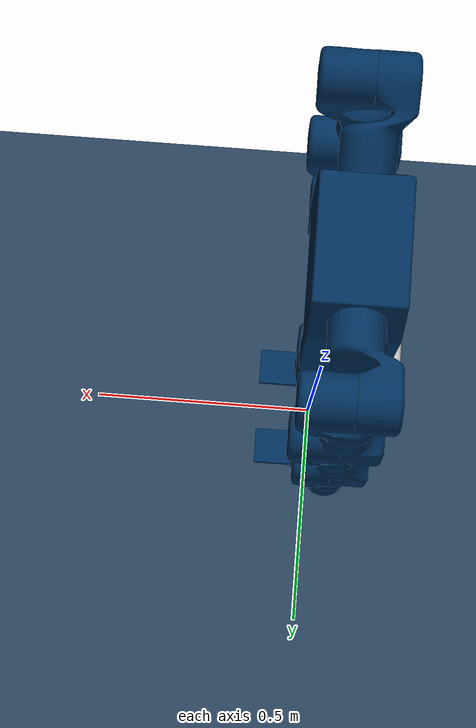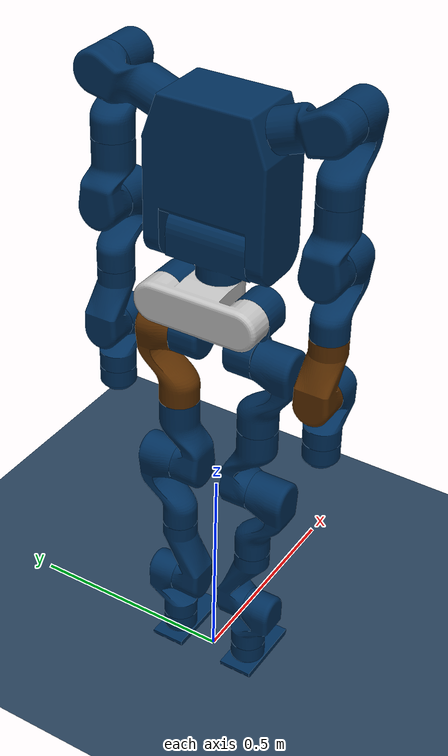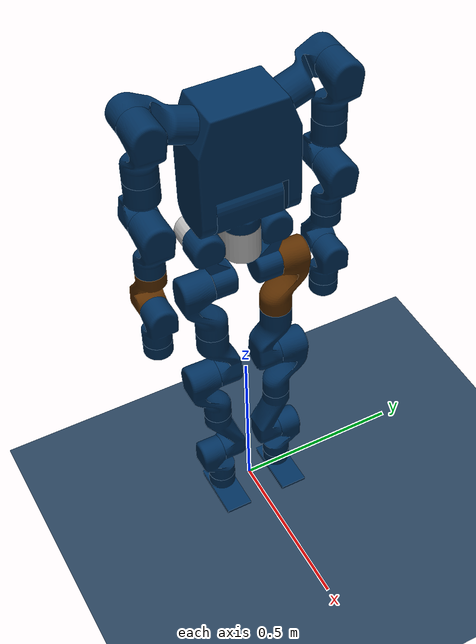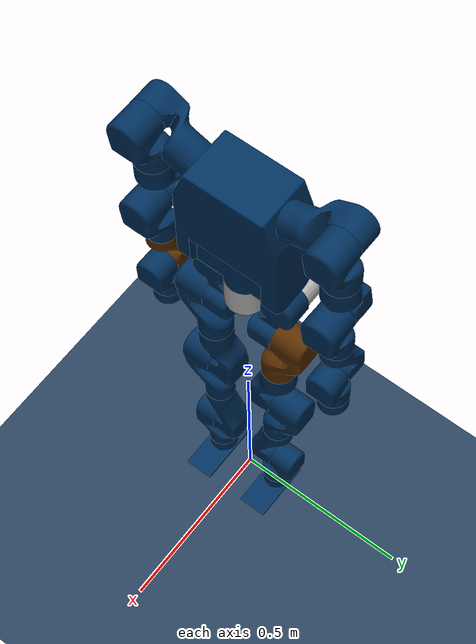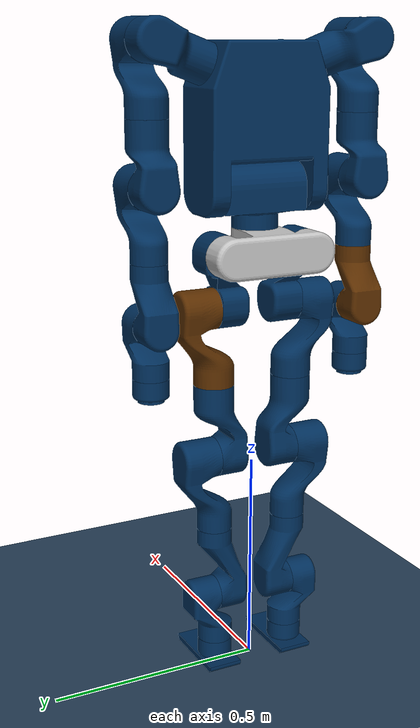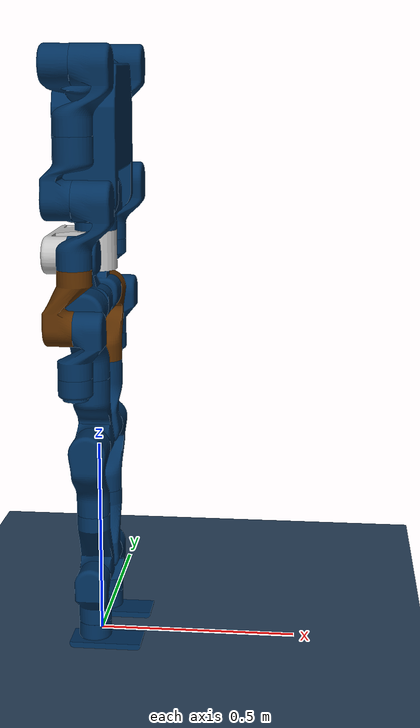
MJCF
<mujoco model="scene">
<include file="HRO-c2-v1_fixed_feet.xml"/>

<statistic center="0 0 0.1" extent="0.8"/>

<visual>
  <headlight diffuse="0.6 0.6 0.6" ambient="0.3 0.3 0.3" specular="0 0 0"/>
  <rgba haze="0.15 0.25 0.35 1"/>
  <global azimuth="150" elevation="-20"/>
</visual>

<asset>
  <texture type="skybox" builtin="gradient" rgb1="0.3 0.5 0.7" rgb2="0 0 0" width="512" height="3072"/>
  <texture type="2d" name="groundplane" builtin="checker" mark="edge" rgb1="0.2 0.3 0.4" rgb2="0.1 0.2 0.3"
           markrgb="0.8 0.8 0.8" width="300" height="300"/>
  <material name="groundplane" texture="groundplane" texuniform="true" texrepeat="5 5" reflectance="0.2"/>
</asset>

<worldbody>
  <light pos="0 0 1.5" dir="0 0 -1" directional="true"/>
  <geom name="floor" size="0 0 1" pos="0 0 0" type="plane" material="groundplane"/>
</worldbody>
</mujoco>

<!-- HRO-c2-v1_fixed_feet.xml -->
<mujoco model="HRO-c2-v1">
  <compiler angle="radian" />

  <option timestep="0.001" tolerance="1e-10" solver="Newton" jacobian="dense" cone="pyramidal" gravity="0 0 -9.81">
        <flag contact="enable" energy="enable"/>
   </option>
   <size njmax="500" nconmax="1000" />
   <default>
      <light castshadow="false" />
      <default class="visual">
          <geom contype="0" conaffinity="0" group="1" type="mesh" euler="1.57 0 0" />
      </default>
      <default class="collision">
          <geom contype="1" conaffinity="1" friction="1.0 0.3 0.3" rgba="0.5 0.6 0.7 0"
              margin="0.001" group="0" />
      </default>
      <joint damping="0.9" frictionloss="0.2" armature="0.01"/>
   </default>

  <asset>
    <mesh name="torso_base_link" file="../meshes/torso_base_link.STL" />
    <mesh name="torso_mid_link" file="../meshes/torso_mid_link.STL" />
    <mesh name="torso_upper_link" file="../meshes/torso_upper_link.STL" />
    <mesh name="right_arm_link_1_2" file="../meshes/right_arm_link_1_2.STL" />
    <mesh name="right_arm_link_2_3" file="../meshes/right_arm_link_2_3.STL" />
    <mesh name="right_arm_link_3_4" file="../meshes/right_arm_link_3_4.STL" />
    <mesh name="right_arm_link_4_5" file="../meshes/right_arm_link_4_5.STL" />
    <mesh name="right_arm_link_5_6" file="../meshes/right_arm_link_5_6.STL" />
    <mesh name="right_arm_link_6_7" file="../meshes/right_arm_link_6_7.STL" />
    <mesh name="right_arm_link_7_flange" file="../meshes/right_arm_link_7_flange.STL" />
    <mesh name="left_arm_link_1_2" file="../meshes/left_arm_link_1_2.STL" />
    <mesh name="left_arm_link_2_3" file="../meshes/left_arm_link_2_3.STL" />
    <mesh name="left_arm_link_3_4" file="../meshes/left_arm_link_3_4.STL" />
    <mesh name="left_arm_link_4_5" file="../meshes/left_arm_link_4_5.STL" />
    <mesh name="left_arm_link_5_6" file="../meshes/left_arm_link_5_6.STL" />
    <mesh name="left_arm_link_6_7" file="../meshes/left_arm_link_6_7.STL" />
    <mesh name="left_arm_link_7_flange" file="../meshes/left_arm_link_7_flange.STL" />
    <mesh name="right_leg_link_1_2" file="../meshes/right_leg_link_1_2.STL" />
    <mesh name="right_leg_link_2_3" file="../meshes/right_leg_link_2_3.STL" />
    <mesh name="right_leg_link_3_4" file="../meshes/right_leg_link_3_4.STL" />
    <mesh name="right_leg_link_4_5" file="../meshes/right_leg_link_4_5.STL" />
    <mesh name="right_leg_link_5_6" file="../meshes/right_leg_link_5_6.STL" />
    <mesh name="right_leg_link_6_7" file="../meshes/right_leg_link_6_7.STL" />
    <mesh name="right_foot" file="../meshes/right_foot.STL" />
    <mesh name="left_leg_link_1_2" file="../meshes/left_leg_link_1_2.STL" />
    <mesh name="left_leg_link_2_3" file="../meshes/left_leg_link_2_3.STL" />
    <mesh name="left_leg_link_3_4" file="../meshes/left_leg_link_3_4.STL" />
    <mesh name="left_leg_link_4_5" file="../meshes/left_leg_link_4_5.STL" />
    <mesh name="left_leg_link_5_6" file="../meshes/left_leg_link_5_6.STL" />
    <mesh name="left_leg_link_6_7" file="../meshes/left_leg_link_6_7.STL" />
    <mesh name="left_foot" file="../meshes/left_foot.STL" />
  </asset>
  <worldbody>
    <body name="torso" pos="0 0 1.05">
      <inertial pos="0 0 -0.07605" quat="1 0 -0.000399148 0" mass="3.813" diaginertia="0.010549 0.0093089 0.0079184"/>
      <freejoint name="float_base"/>
      <geom type="mesh" contype="0" conaffinity="0" group="1" density="0" rgba="0.752941 0.752941 0.752941 1" mesh="torso_base_link" />
      <site name="imu" quat="1 0 0 0"/>
      <body name="torso_mid_link">
        <inertial pos="-0.00156358 0.00715796 0.0658836" quat="0.50209 0.502078 -0.497913 0.497901" mass="1.31669" diaginertia="0.00304434 0.0026738 0.0020105" />
        <joint name="torso_pan_joint" pos="0 0 0" axis="0 0 1" />
        <geom type="mesh" rgba="0 0.180392 0.352941 1" mesh="torso_mid_link" />
        <body name="torso_upper_link" pos="-0.002 0 0.09" quat="0.707105 0.707108 0 0">
          <inertial pos="0 0.149492 0.000746189" quat="0.707107 0.707107 0 0" mass="12.6305" diaginertia="0.175502 0.118926 0.0998809" />
          <joint name="torso_tilt_joint" pos="0 0 0" axis="0 0 1" />
          <geom type="mesh" rgba="0 0.180392 0.352941 1" mesh="torso_upper_link" />
          <body name="right_arm_link_1_2" pos="0 0.25913 0.12256" quat="0.696363 -0.122789 0.122789 0.696365">
            <inertial pos="6.66229e-05 0.00972183 0.111511" quat="0.690745 -0.151338 0.152103 0.690531" mass="0.895979" diaginertia="0.00180636 0.00172632 0.0010585" />
            <joint name="right_arm_joint_1" pos="0 0 0" axis="0 0 1" />
            <geom type="mesh" rgba="0 0.180392 0.352941 1" mesh="right_arm_link_1_2" />
            <body name="right_arm_link_2_3" pos="2.2306e-05 0.001 0.143974" quat="-0.40558 -0.40558 0.579228 -0.579228">
              <inertial pos="-6.90115e-05 0.0941053 0.0187134" quat="0.590039 0.389286 -0.388917 0.590808" mass="0.939061" diaginertia="0.00223026 0.00214876 0.00113389" />
              <joint name="right_arm_joint_2" pos="0 0 0" axis="0 0 -1" />
              <geom type="mesh" rgba="0 0.180392 0.352941 1" mesh="right_arm_link_2_3" />
              <body name="right_arm_link_3_4" pos="-0.000101672 0.155918 -0.001" quat="0.707107 -0.707107 0 0">
                <inertial pos="6.65707e-05 0.00972352 0.111509" quat="0.690667 -0.151351 0.152098 0.690607" mass="0.89602" diaginertia="0.00180639 0.00172628 0.00105857" />
                <joint name="right_arm_joint_3" pos="0 0 0" axis="0 0 1" />
                <geom type="mesh" rgba="0 0.180392 0.352941 1" mesh="right_arm_link_3_4" />
                <body name="right_arm_link_4_5" pos="0.000101672 0.001 0.144082" quat="0.707107 0.707107 0 0">
                  <inertial pos="-5.49866e-05 0.0775911 0.0234808" quat="0.587745 0.392875 -0.392567 0.5883" mass="0.75432" diaginertia="0.0018719 0.00179237 0.000839777" />
                  <joint name="right_arm_joint_4" pos="0 0 0" axis="0 0 -1" />
                  <geom type="mesh" rgba="0 0.180392 0.352941 1" mesh="right_arm_link_4_5" />
                  <body name="right_arm_link_5_6" pos="-0.000101672 0.155918 -0.001" quat="0.707107 -0.707107 0 0">
                    <inertial pos="4.81902e-05 0.0120985 0.0723354" quat="0.694249 -0.131912 0.132621 0.695003" mass="0.830411" diaginertia="0.00139479 0.00131924 0.000763044" />
                    <joint name="right_arm_joint_5" pos="0 0 0" axis="0 0 1" />
                    <geom type="mesh" rgba="0.352941 0.176471 0 1" mesh="right_arm_link_5_6" />
                    <body name="right_arm_link_6_7" pos="8.89858e-05 0.001 0.139053" quat="0 0 0.707107 -0.707107">
                      <inertial pos="5.55441e-05 -0.0645896 0.0130664" quat="0.374227 0.599929 -0.599467 0.375073" mass="0.603009" diaginertia="0.000972707 0.000896384 0.000563153" />
                      <joint name="right_arm_joint_6" pos="0 0 0" axis="0 0 -1" />
                      <geom type="mesh" rgba="0 0.180392 0.352941 1" mesh="right_arm_link_6_7" />
                      <body name="right_arm_link_7_flange" pos="8.89858e-05 -0.114947 -0.001" quat="0 0 -0.707107 0.707107">
                        <inertial pos="0 0 0.030125" quat="0.5 0.5 -0.5 0.5" mass="0.177051" diaginertia="0.000183558 0.000118797 0.000118797" />
                        <joint name="right_arm_joint_7" pos="0 0 0" axis="0 0 1" />
                        <geom type="mesh" rgba="0 0.180392 0.352941 1" mesh="right_arm_link_7_flange" />
                      </body>
                    </body>
                  </body>
                </body>
              </body>
            </body>
          </body>
          <body name="left_arm_link_1_2" pos="0 0.259129 -0.122557" quat="0.122788 -0.696364 0.696364 0.122788">
            <inertial pos="6.68057e-05 0.00972203 0.11151" quat="0.690616 -0.151344 0.152113 0.690656" mass="0.895996" diaginertia="0.00180638 0.00172627 0.00105855" />
            <joint name="left_arm_joint_1" pos="0 0 0" axis="0 0 1" />
            <geom type="mesh" rgba="0 0.180392 0.352941 1" mesh="left_arm_link_1_2" />
            <body name="left_arm_link_2_3" pos="0.00017655 0.001 0.14397" quat="-0.40558 -0.40558 -0.579228 0.579228">
              <inertial pos="-6.90427e-05 0.0941053 0.0187133" quat="0.590035 0.389283 -0.388919 0.590812" mass="0.939059" diaginertia="0.00223027 0.00214876 0.0011339" />
              <joint name="left_arm_joint_2" pos="0 0 0" axis="0 0 1" />
              <geom type="mesh" rgba="0 0.180392 0.352941 1" mesh="left_arm_link_2_3" />
              <body name="left_arm_link_3_4" pos="-0.000101672 0.155918 -0.001" quat="0.707107 -0.707107 0 0">
                <inertial pos="6.66116e-05 0.00972343 0.111509" quat="0.690659 -0.151349 0.1521 0.690615" mass="0.896018" diaginertia="0.00180639 0.00172628 0.00105857" />
                <joint name="left_arm_joint_3" pos="0 0 0" axis="0 0 1" />
                <geom type="mesh" rgba="0 0.180392 0.352941 1" mesh="left_arm_link_3_4" />
                <body name="left_arm_link_4_5" pos="0.000101672 0.001 0.144082" quat="0.707107 0.707107 0 0">
                  <inertial pos="-5.49866e-05 0.0775911 0.0234808" quat="0.587745 0.392875 -0.392567 0.5883" mass="0.75432" diaginertia="0.0018719 0.00179237 0.000839777" />
                  <joint name="left_arm_joint_4" pos="0 0 0" axis="0 0 1" />
                  <geom type="mesh" rgba="0 0.180392 0.352941 1" mesh="left_arm_link_4_5" />
                  <body name="left_arm_link_5_6" pos="-0.000101672 0.155918 -0.001" quat="0.707107 -0.707107 0 0">
                    <inertial pos="6.35484e-05 0.0159543 0.103902" quat="0.693997 -0.133308 0.13402 0.69472" mass="0.629719" diaginertia="0.0012358 0.00115924 0.000609412" />
                    <joint name="left_arm_joint_5" pos="0 0 0" axis="0 0 1" />
                    <geom type="mesh" rgba="0 0.180392 0.352941 1" mesh="left_arm_link_5_6" />
                    <body name="left_arm_link_6_7" pos="8.89858e-05 0.001 0.139053" quat="0.707107 0.707107 0 0">
                      <inertial pos="-5.55441e-05 0.0645896 0.0130664" quat="0.599467 0.375073 -0.374227 0.599929" mass="0.603009" diaginertia="0.000972707 0.000896384 0.000563153" />
                      <joint name="left_arm_joint_6" pos="0 0 0" axis="0 0 1" />
                      <geom type="mesh" rgba="0 0.180392 0.352941 1" mesh="left_arm_link_6_7" />
                      <body name="left_arm_link_7_flange" pos="-8.89858e-05 0.114947 -0.001" quat="0.707107 -0.707107 0 0">
                        <inertial pos="0 0 0.030125" quat="0.5 0.5 -0.5 0.5" mass="0.177051" diaginertia="0.000183558 0.000118797 0.000118797" />
                        <joint name="left_arm_joint_7" pos="0 0 0" axis="0 0 1" />
                        <geom type="mesh" rgba="0 0.180392 0.352941 1" mesh="left_arm_link_7_flange" />
                      </body>
                    </body>
                  </body>
                </body>
              </body>
            </body>
          </body>
        </body>
      </body>
      <body name="right_leg_link_1_2" pos="-0.03 -0.1 -0.05" quat="0.499998 0.5 0.500002 0.5">
        <inertial pos="0.0187738 -0.0799753 0.0291053" quat="0.702898 0.660003 0.264826 0.0140361" mass="1.91641" diaginertia="0.00602508 0.0059124 0.00177096" />
        <joint name="right_leg_joint_1" pos="0 0 0" axis="0 0 1" />
        <geom type="mesh" rgba="0 0.180392 0.352941 1" mesh="right_leg_link_1_2" />
        <body name="right_leg_link_2_3" pos="-0.001 -0.124082 0.0299983" quat="0.707107 0 -0.707107 0">
          <inertial pos="6.31218e-05 -0.106217 0.0190122" quat="0.402495 0.581516 -0.581017 0.402811" mass="0.960297" diaginertia="0.0026208 0.00253389 0.00117053" />
          <joint name="right_leg_joint_2" pos="0 0 0" axis="0 0 1" />
          <geom type="mesh" rgba="0 0.180392 0.352941 1" mesh="right_leg_link_2_3" />
          <body name="right_leg_link_3_4" pos="0.000101672 -0.175918 -0.001" quat="0.707107 0.707107 0 0">
            <inertial pos="-6.98893e-05 -0.0103212 0.131072" quat="0.697335 0.119794 -0.120419 0.696328" mass="0.928189" diaginertia="0.00230822 0.00222229 0.00111523" />
            <joint name="right_leg_joint_3" pos="0 0 0" axis="0 0 1" />
            <geom type="mesh" rgba="0 0.180392 0.352941 1" mesh="right_leg_link_3_4" />
            <body name="right_leg_link_4_5" pos="-0.000101672 -0.001 0.174082" quat="0.707107 -0.707107 0 0">
              <inertial pos="5.19679e-05 -0.0882835 0.0237428" quat="0.405472 0.579685 -0.57887 0.405545" mass="0.774401" diaginertia="0.00223741 0.00215316 0.000869691" />
              <joint name="right_leg_joint_4" pos="0 0 0" axis="0 0 1" />
              <geom type="mesh" rgba="0 0.180392 0.352941 1" mesh="right_leg_link_4_5" />
              <body name="right_leg_link_5_6" pos="0.000101672 -0.175918 -0.001" quat="0.707107 0.707107 0 0">
                <inertial pos="-6.10694e-05 -0.0164428 0.123013" quat="0.698336 0.107307 -0.107761 0.699428" mass="0.662392" diaginertia="0.00165874 0.00157331 0.000655129" />
                <joint name="right_leg_joint_5" pos="0 0 0" axis="0 0 1" />
                <geom type="mesh" rgba="0 0.180392 0.352941 1" mesh="right_leg_link_5_6" />
                <body name="right_leg_link_6_7" pos="-8.89858e-05 -0.001 0.169053" quat="0.707107 -0.707107 0 0">
                  <inertial pos="5.55441e-05 -0.0645896 0.0130664" quat="0.374227 0.599929 -0.599467 0.375073" mass="0.603009" diaginertia="0.000972707 0.000896384 0.000563153" />
                  <joint name="right_leg_joint_6" pos="0 0 0" axis="0 0 1" />
                  <geom type="mesh" rgba="0 0.180392 0.352941 1" mesh="right_leg_link_6_7" />
                  <body name="right_foot" pos="8.89858e-05 -0.114947 -0.001" quat="0.707107 0.707107 0 0">
                    <inertial pos="0.0241549 0 0.0493965" quat="0 0.708514 0 0.705697" mass="0.71281" diaginertia="0.0019389 0.00158618 0.000425854" />
                    <joint name="right_leg_joint_7" pos="0 0 0" axis="0 0 1" />
                    <geom type="mesh" rgba="0 0.180392 0.352941 1" mesh="right_foot" />
                  </body>
                </body>
              </body>
            </body>
          </body>
        </body>
      </body>
      <body name="left_leg_link_1_2" pos="-0.03 0.1 -0.05" quat="0.5 0.5 0.5 0.5">
        <inertial pos="-0.0187738 -0.0799753 0.0291053" quat="0.702898 0.660003 -0.264826 -0.0140361" mass="1.91641" diaginertia="0.00602508 0.0059124 0.00177096" />
        <joint name="left_leg_joint_1" pos="0 0 0" axis="0 0 1" />
        <geom type="mesh" rgba="0 0.180392 0.352941 1" mesh="left_leg_link_1_2" />
        <body name="left_leg_link_2_3" pos="0.001 -0.124082 0.0300017" quat="0 0.707107 0 0.707107">
          <inertial pos="-4.78961e-05 0.0798815 0.00831302" quat="0.583556 0.399089 -0.398794 0.584084" mass="1.27657" diaginertia="0.00293392 0.00289462 0.00152429" />
          <joint name="left_leg_joint_2" pos="0 0 0" axis="0 0 1" />
          <geom type="mesh" rgba="0.352941 0.176471 0 1" mesh="left_leg_link_2_3" />
          <body name="left_leg_link_3_4" pos="-0.000101672 0.175918 -0.001" quat="0.707107 -0.707107 0 0">
            <inertial pos="6.98911e-05 0.0103212 0.131072" quat="0.697335 -0.119794 0.120419 0.696328" mass="0.928189" diaginertia="0.00230822 0.00222229 0.00111523" />
            <joint name="left_leg_joint_3" pos="0 0 0" axis="0 0 1" />
            <geom type="mesh" rgba="0 0.180392 0.352941 1" mesh="left_leg_link_3_4" />
            <body name="left_leg_link_4_5" pos="0.000101672 0.001 0.174082" quat="0.707107 0.707107 0 0">
              <inertial pos="-5.19729e-05 0.0882835 0.0237428" quat="0.57887 0.405545 -0.405472 0.579685" mass="0.774401" diaginertia="0.00223741 0.00215316 0.000869691" />
              <joint name="left_leg_joint_4" pos="0 0 0" axis="0 0 1" />
              <geom type="mesh" rgba="0 0.180392 0.352941 1" mesh="left_leg_link_4_5" />
              <body name="left_leg_link_5_6" pos="-0.000101672 0.175918 -0.001" quat="0.707107 -0.707107 0 0">
                <inertial pos="6.10694e-05 0.0164428 0.123013" quat="0.698336 -0.107307 0.107761 0.699428" mass="0.662392" diaginertia="0.00165874 0.00157331 0.000655129" />
                <joint name="left_leg_joint_5" pos="0 0 0" axis="0 0 1" />
                <geom type="mesh" rgba="0 0.180392 0.352941 1" mesh="left_leg_link_5_6" />
                <body name="left_leg_link_6_7" pos="8.89858e-05 0.001 0.169053" quat="0.707107 0.707107 0 0">
                  <inertial pos="-5.55441e-05 0.0645896 0.0130664" quat="0.599467 0.375073 -0.374227 0.599929" mass="0.603009" diaginertia="0.000972707 0.000896384 0.000563153" />
                  <joint name="left_leg_joint_6" pos="0 0 0" axis="0 0 1" />
                  <geom type="mesh" rgba="0 0.180392 0.352941 1" mesh="left_leg_link_6_7" />
                  <body name="left_foot" pos="-8.89858e-05 0.114947 -0.001" quat="0.707107 -0.707107 0 0">
                    <inertial pos="0.0241549 0 0.0493965" quat="0 0.708514 0 0.705697" mass="0.71281" diaginertia="0.0019389 0.00158618 0.000425854" />
                    <joint name="left_leg_joint_7" pos="0 0 0" axis="0 0 1" />
                    <geom type="mesh" rgba="0 0.180392 0.352941 1" mesh="left_foot" />
                  </body>
                </body>
              </body>
            </body>
          </body>
        </body>
      </body>
    </body>
    <light name="main_light" pos="5 0 5" dir="-1 0 -1" />
  </worldbody>

  <actuator>
    <motor name="left_leg_joint_1" joint="left_leg_joint_1" />
    <motor name="left_leg_joint_2" joint="left_leg_joint_2" />
    <motor name="left_leg_joint_3" joint="left_leg_joint_3" />
    <motor name="left_leg_joint_4" joint="left_leg_joint_4" />
    <motor name="left_leg_joint_5" joint="left_leg_joint_5" />
    <motor name="left_leg_joint_6" joint="left_leg_joint_6" />
    <motor name="left_leg_joint_7" joint="left_leg_joint_7" />

    <motor name="right_leg_joint_1" joint="right_leg_joint_1" />
    <motor name="right_leg_joint_2" joint="right_leg_joint_2" />
    <motor name="right_leg_joint_3" joint="right_leg_joint_3" />
    <motor name="right_leg_joint_4" joint="right_leg_joint_4" />
    <motor name="right_leg_joint_5" joint="right_leg_joint_5" />
    <motor name="right_leg_joint_6" joint="right_leg_joint_6" />
    <motor name="right_leg_joint_7" joint="right_leg_joint_7" />

    <motor name="torso_pan_joint" joint="torso_pan_joint" />
    <motor name="torso_tilt_joint" joint="torso_tilt_joint" />

    <motor name="left_arm_joint_1" joint="left_arm_joint_1" />
    <motor name="left_arm_joint_2" joint="left_arm_joint_2" />
    <motor name="left_arm_joint_3" joint="left_arm_joint_3" />
    <motor name="left_arm_joint_4" joint="left_arm_joint_4" />
    <motor name="left_arm_joint_5" joint="left_arm_joint_5" />
    <motor name="left_arm_joint_6" joint="left_arm_joint_6" />
    <motor name="left_arm_joint_7" joint="left_arm_joint_7" />

    <motor name="right_arm_joint_1" joint="right_arm_joint_1" />
    <motor name="right_arm_joint_2" joint="right_arm_joint_2" />
    <motor name="right_arm_joint_3" joint="right_arm_joint_3" />
    <motor name="right_arm_joint_4" joint="right_arm_joint_4" />
    <motor name="right_arm_joint_5" joint="right_arm_joint_5" />
    <motor name="right_arm_joint_6" joint="right_arm_joint_6" />
    <motor name="right_arm_joint_7" joint="right_arm_joint_7" />
  </actuator>

  <sensor>
      <framequat name="baselink-quat" objtype="site" objname="imu" />
      <velocimeter name="baselink-velocity" site="imu" />
      <gyro name="baselink-gyro" site="imu" />
      <accelerometer name="baselink-baseAcc" site="imu" />
  </sensor>

  <equality>
    <connect body1="left_foot" body2="world" anchor="1 0 0"/>
    <connect body1="left_foot" body2="world" anchor="0 1 0"/>
    <connect body1="left_foot" body2="world" anchor="-1 0 0"/>
    <connect body1="left_foot" body2="world" anchor="0 -1 0"/>

    <connect body1="right_foot" body2="world" anchor="1 0 0"/>
    <connect body1="right_foot" body2="world" anchor="0 1 0"/>
    <connect body1="right_foot" body2="world" anchor="-1 0 0"/>
    <connect body1="right_foot" body2="world" anchor="0 -1 0"/>

  </equality>

</mujoco>
